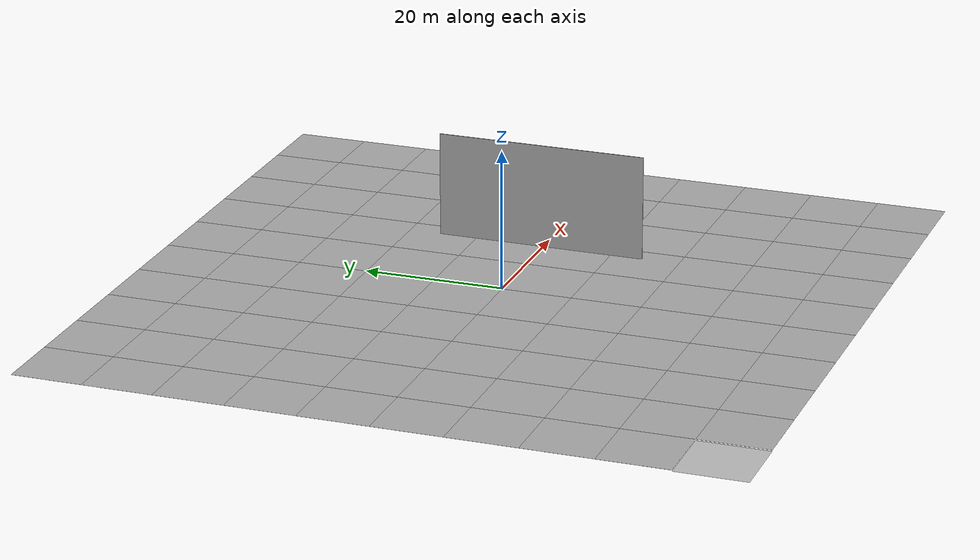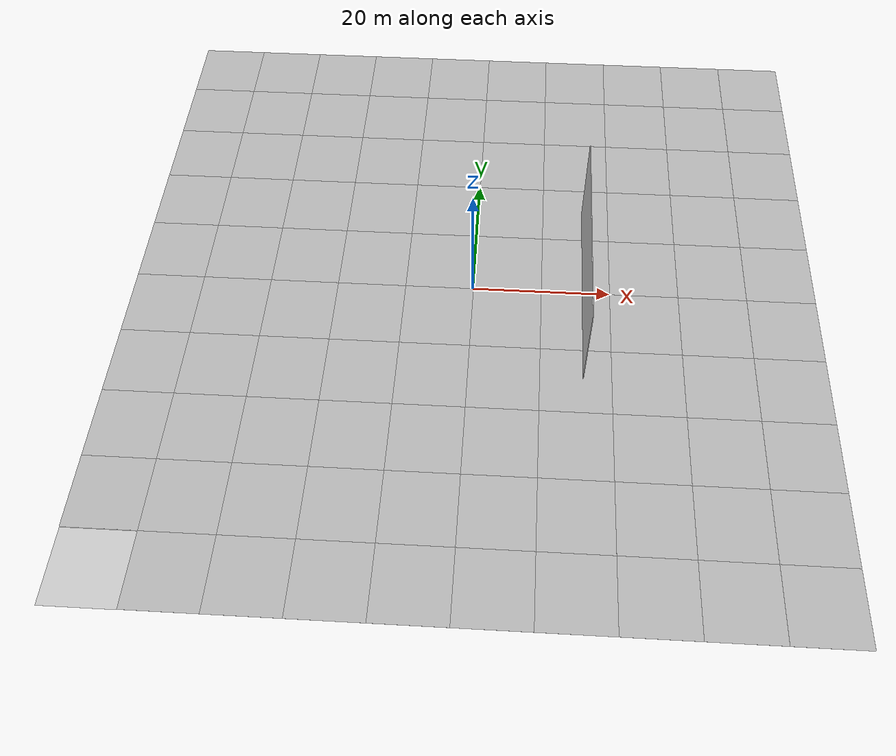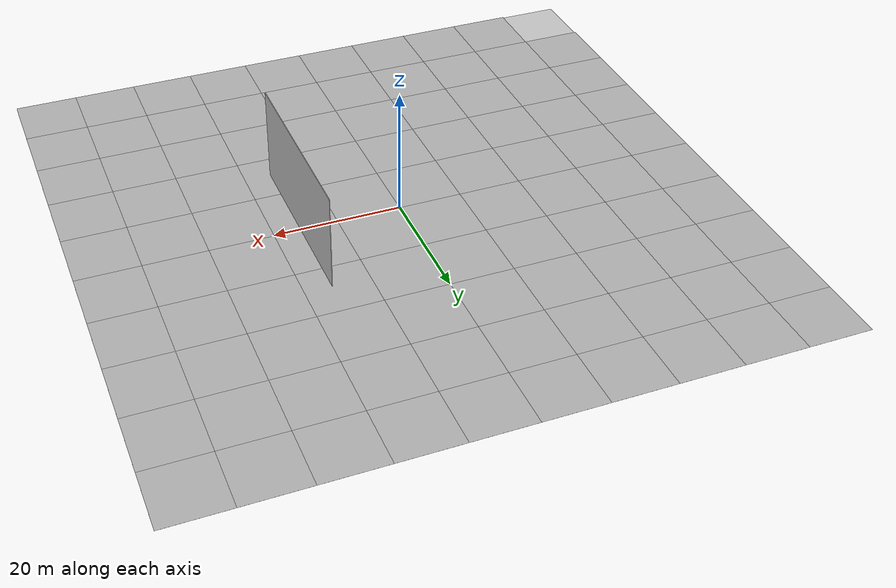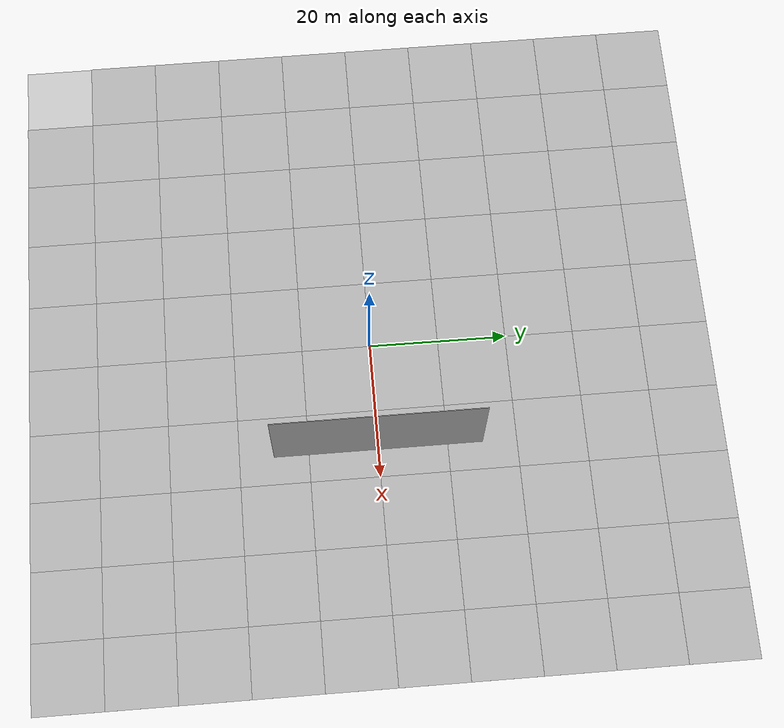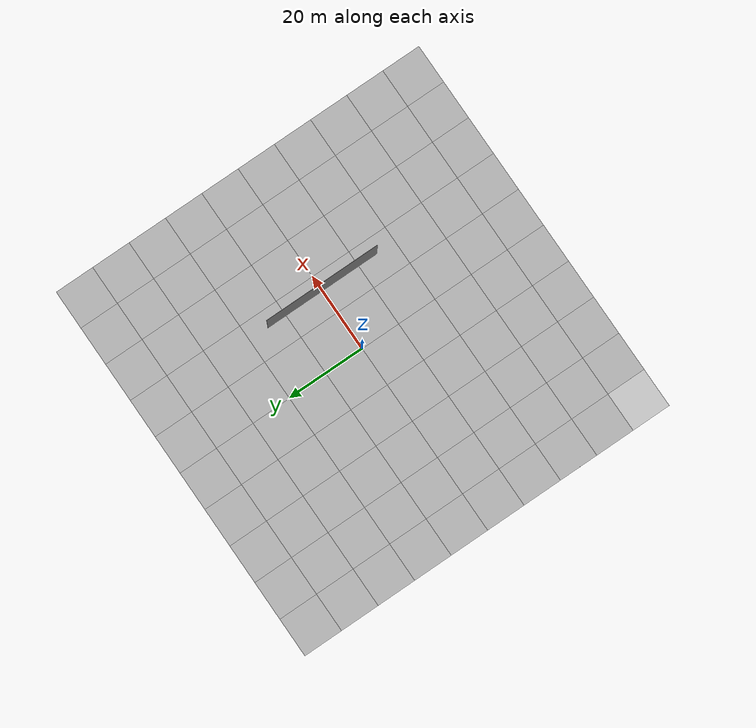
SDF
<sdf version="1.6">
 <world name="default">
  <physics type="ode">
   <ode>
    <solver>
     <type>quick</type>
     <iters>100</iters>
     <sor>1.0</sor>
     <island_threads>16</island_threads>
     <thread_position_correction>true</thread_position_correction>
    </solver>
    <constraints>
     <cfm>0.0</cfm>
     <erp>0.2</erp>
     <contact_max_correcting_vel>0.1</contact_max_correcting_vel>
     <contact_surface_layer>0.0</contact_surface_layer>
    </constraints>
   </ode>
   <real_time_update_rate>-1</real_time_update_rate>
  </physics>
  <gravity>0 0 -9.8</gravity>
  <include><uri>model://sun</uri></include>
  <include><uri>model://ground_plane_unique</uri><name>ground_plane</name></include>
  <include>
   <uri>model://down_cam</uri>
   <name>down_cam_1</name>
   <plugin name="down_cam_follower_1" filename="libFollowerDownCamPlugin.so">
    <target_model>iris1</target_model>
    <target_link>iris::base_link</target_link>
    <offset>0 0 -0.05</offset>
   </plugin>
  </include>
  <include><uri>model://canvas_screen</uri><pose>16 0 7 0 0 0</pose></include>
 </world>
</sdf>

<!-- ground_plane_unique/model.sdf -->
<sdf version="1.6">
  <model name="ground_plane_unique">
    <static>true</static>
    <link name="ground_link">
      <pose>0 0 0 0 0 0</pose>
      <collision name="collision">
        <geometry>
          <plane>
            <normal>0 0 1</normal>
            <size>100 100</size>
          </plane>
        </geometry>
        <surface>
          <friction>
            <ode>
              <mu>1.0</mu>
              <mu2>1.0</mu2>
            </ode>
          </friction>
        </surface>
      </collision>
      <visual name="tile_00_00">
        <pose>-45.000 -45.000 0.005 0 0 0</pose>
        <cast_shadows>false</cast_shadows>
        <geometry>
          <plane>
            <normal>0 0 1</normal>
            <size>10 10</size>
          </plane>
        </geometry>
        <material>
          <script>
            <uri>model://ground_plane_unique/materials/scripts</uri>
            <uri>model://ground_plane_unique/materials/textures</uri>
            <name>GroundUnique/Tile000</name>
          </script>
        </material>
      </visual>
      <visual name="tile_00_01">
        <pose>-35.000 -45.000 0.005 0 0 0</pose>
        <cast_shadows>false</cast_shadows>
        <geometry>
          <plane>
            <normal>0 0 1</normal>
            <size>10 10</size>
          </plane>
        </geometry>
        <material>
          <script>
            <uri>model://ground_plane_unique/materials/scripts</uri>
            <uri>model://ground_plane_unique/materials/textures</uri>
            <name>GroundUnique/Tile001</name>
          </script>
        </material>
      </visual>
      <visual name="tile_00_02">
        <pose>-25.000 -45.000 0.005 0 0 0</pose>
        <cast_shadows>false</cast_shadows>
        <geometry>
          <plane>
            <normal>0 0 1</normal>
            <size>10 10</size>
          </plane>
        </geometry>
        <material>
          <script>
            <uri>model://ground_plane_unique/materials/scripts</uri>
            <uri>model://ground_plane_unique/materials/textures</uri>
            <name>GroundUnique/Tile002</name>
          </script>
        </material>
      </visual>
      <visual name="tile_00_03">
        <pose>-15.000 -45.000 0.005 0 0 0</pose>
        <cast_shadows>false</cast_shadows>
        <geometry>
          <plane>
            <normal>0 0 1</normal>
            <size>10 10</size>
          </plane>
        </geometry>
        <material>
          <script>
            <uri>model://ground_plane_unique/materials/scripts</uri>
            <uri>model://ground_plane_unique/materials/textures</uri>
            <name>GroundUnique/Tile003</name>
          </script>
        </material>
      </visual>
      <visual name="tile_00_04">
        <pose>-5.000 -45.000 0.005 0 0 0</pose>
        <cast_shadows>false</cast_shadows>
        <geometry>
          <plane>
            <normal>0 0 1</normal>
            <size>10 10</size>
          </plane>
        </geometry>
        <material>
          <script>
            <uri>model://ground_plane_unique/materials/scripts</uri>
            <uri>model://ground_plane_unique/materials/textures</uri>
            <name>GroundUnique/Tile004</name>
          </script>
        </material>
      </visual>
      <visual name="tile_00_05">
        <pose>5.000 -45.000 0.005 0 0 0</pose>
        <cast_shadows>false</cast_shadows>
        <geometry>
          <plane>
            <normal>0 0 1</normal>
            <size>10 10</size>
          </plane>
        </geometry>
        <material>
          <script>
            <uri>model://ground_plane_unique/materials/scripts</uri>
            <uri>model://ground_plane_unique/materials/textures</uri>
            <name>GroundUnique/Tile005</name>
          </script>
        </material>
      </visual>
      <visual name="tile_00_06">
        <pose>15.000 -45.000 0.005 0 0 0</pose>
        <cast_shadows>false</cast_shadows>
        <geometry>
          <plane>
            <normal>0 0 1</normal>
            <size>10 10</size>
          </plane>
        </geometry>
        <material>
          <script>
            <uri>model://ground_plane_unique/materials/scripts</uri>
            <uri>model://ground_plane_unique/materials/textures</uri>
            <name>GroundUnique/Tile006</name>
          </script>
        </material>
      </visual>
      <visual name="tile_00_07">
        <pose>25.000 -45.000 0.005 0 0 0</pose>
        <cast_shadows>false</cast_shadows>
        <geometry>
          <plane>
            <normal>0 0 1</normal>
            <size>10 10</size>
          </plane>
        </geometry>
        <material>
          <script>
            <uri>model://ground_plane_unique/materials/scripts</uri>
            <uri>model://ground_plane_unique/materials/textures</uri>
            <name>GroundUnique/Tile007</name>
          </script>
        </material>
      </visual>
      <visual name="tile_00_08">
        <pose>35.000 -45.000 0.005 0 0 0</pose>
        <cast_shadows>false</cast_shadows>
        <geometry>
          <plane>
            <normal>0 0 1</normal>
            <size>10 10</size>
          </plane>
        </geometry>
        <material>
          <script>
            <uri>model://ground_plane_unique/materials/scripts</uri>
            <uri>model://ground_plane_unique/materials/textures</uri>
            <name>GroundUnique/Tile008</name>
          </script>
        </material>
      </visual>
      <visual name="tile_00_09">
        <pose>45.000 -45.000 0.005 0 0 0</pose>
        <cast_shadows>false</cast_shadows>
        <geometry>
          <plane>
            <normal>0 0 1</normal>
            <size>10 10</size>
          </plane>
        </geometry>
        <material>
          <script>
            <uri>model://ground_plane_unique/materials/scripts</uri>
            <uri>model://ground_plane_unique/materials/textures</uri>
            <name>GroundUnique/Tile009</name>
          </script>
        </material>
      </visual>
      <visual name="tile_01_00">
        <pose>-45.000 -35.000 0.005 0 0 0</pose>
        <cast_shadows>false</cast_shadows>
        <geometry>
          <plane>
            <normal>0 0 1</normal>
            <size>10 10</size>
          </plane>
        </geometry>
        <material>
          <script>
            <uri>model://ground_plane_unique/materials/scripts</uri>
            <uri>model://ground_plane_unique/materials/textures</uri>
            <name>GroundUnique/Tile010</name>
          </script>
        </material>
      </visual>
      <visual name="tile_01_01">
        <pose>-35.000 -35.000 0.005 0 0 0</pose>
        <cast_shadows>false</cast_shadows>
        <geometry>
          <plane>
            <normal>0 0 1</normal>
            <size>10 10</size>
          </plane>
        </geometry>
        <material>
          <script>
            <uri>model://ground_plane_unique/materials/scripts</uri>
            <uri>model://ground_plane_unique/materials/textures</uri>
            <name>GroundUnique/Tile011</name>
          </script>
        </material>
      </visual>
      <visual name="tile_01_02">
        <pose>-25.000 -35.000 0.005 0 0 0</pose>
        <cast_shadows>false</cast_shadows>
        <geometry>
          <plane>
            <normal>0 0 1</normal>
            <size>10 10</size>
          </plane>
        </geometry>
        <material>
          <script>
            <uri>model://ground_plane_unique/materials/scripts</uri>
            <uri>model://ground_plane_unique/materials/textures</uri>
            <name>GroundUnique/Tile012</name>
          </script>
        </material>
      </visual>
      <visual name="tile_01_03">
        <pose>-15.000 -35.000 0.005 0 0 0</pose>
        <cast_shadows>false</cast_shadows>
        <geometry>
          <plane>
            <normal>0 0 1</normal>
            <size>10 10</size>
          </plane>
        </geometry>
        <material>
          <script>
            <uri>model://ground_plane_unique/materials/scripts</uri>
            <uri>model://ground_plane_unique/materials/textures</uri>
            <name>GroundUnique/Tile013</name>
          </script>
        </material>
      </visual>
      <visual name="tile_01_04">
        <pose>-5.000 -35.000 0.005 0 0 0</pose>
        <cast_shadows>false</cast_shadows>
        <geometry>
          <plane>
            <normal>0 0 1</normal>
            <size>10 10</size>
          </plane>
        </geometry>
        <material>
          <script>
            <uri>model://ground_plane_unique/materials/scripts</uri>
            <uri>model://ground_plane_unique/materials/textures</uri>
            <name>GroundUnique/Tile014</name>
          </script>
        </material>
      </visual>
      <visual name="tile_01_05">
        <pose>5.000 -35.000 0.005 0 0 0</pose>
        <cast_shadows>false</cast_shadows>
        <geometry>
          <plane>
            <normal>0 0 1</normal>
            <size>10 10</size>
          </plane>
        </geometry>
        <material>
          <script>
            <uri>model://ground_plane_unique/materials/scripts</uri>
            <uri>model://ground_plane_unique/materials/textures</uri>
            <name>GroundUnique/Tile015</name>
          </script>
        </material>
      </visual>
      <visual name="tile_01_06">
        <pose>15.000 -35.000 0.005 0 0 0</pose>
        <cast_shadows>false</cast_shadows>
        <geometry>
          <plane>
            <normal>0 0 1</normal>
            <size>10 10</size>
          </plane>
        </geometry>
        <material>
          <script>
            <uri>model://ground_plane_unique/materials/scripts</uri>
            <uri>model://ground_plane_unique/materials/textures</uri>
            <name>GroundUnique/Tile016</name>
          </script>
        </material>
      </visual>
      <visual name="tile_01_07">
        <pose>25.000 -35.000 0.005 0 0 0</pose>
        <cast_shadows>false</cast_shadows>
        <geometry>
          <plane>
            <normal>0 0 1</normal>
            <size>10 10</size>
          </plane>
        </geometry>
        <material>
          <script>
            <uri>model://ground_plane_unique/materials/scripts</uri>
            <uri>model://ground_plane_unique/materials/textures</uri>
            <name>GroundUnique/Tile017</name>
          </script>
        </material>
      </visual>
      <visual name="tile_01_08">
        <pose>35.000 -35.000 0.005 0 0 0</pose>
        <cast_shadows>false</cast_shadows>
        <geometry>
          <plane>
            <normal>0 0 1</normal>
            <size>10 10</size>
          </plane>
        </geometry>
        <material>
          <script>
            <uri>model://ground_plane_unique/materials/scripts</uri>
            <uri>model://ground_plane_unique/materials/textures</uri>
            <name>GroundUnique/Tile018</name>
          </script>
        </material>
      </visual>
      <visual name="tile_01_09">
        <pose>45.000 -35.000 0.005 0 0 0</pose>
        <cast_shadows>false</cast_shadows>
        <geometry>
          <plane>
            <normal>0 0 1</normal>
            <size>10 10</size>
          </plane>
        </geometry>
        <material>
          <script>
            <uri>model://ground_plane_unique/materials/scripts</uri>
            <uri>model://ground_plane_unique/materials/textures</uri>
            <name>GroundUnique/Tile019</name>
          </script>
        </material>
      </visual>
      <visual name="tile_02_00">
        <pose>-45.000 -25.000 0.005 0 0 0</pose>
        <cast_shadows>false</cast_shadows>
        <geometry>
          <plane>
            <normal>0 0 1</normal>
            <size>10 10</size>
          </plane>
        </geometry>
        <material>
          <script>
            <uri>model://ground_plane_unique/materials/scripts</uri>
            <uri>model://ground_plane_unique/materials/textures</uri>
            <name>GroundUnique/Tile020</name>
          </script>
        </material>
      </visual>
      <visual name="tile_02_01">
        <pose>-35.000 -25.000 0.005 0 0 0</pose>
        <cast_shadows>false</cast_shadows>
        <geometry>
          <plane>
            <normal>0 0 1</normal>
            <size>10 10</size>
          </plane>
        </geometry>
        <material>
          <script>
            <uri>model://ground_plane_unique/materials/scripts</uri>
            <uri>model://ground_plane_unique/materials/textures</uri>
            <name>GroundUnique/Tile021</name>
          </script>
        </material>
      </visual>
      <visual name="tile_02_02">
        <pose>-25.000 -25.000 0.005 0 0 0</pose>
        <cast_shadows>false</cast_shadows>
        <geometry>
          <plane>
            <normal>0 0 1</normal>
            <size>10 10</size>
          </plane>
        </geometry>
        <material>
          <script>
            <uri>model://ground_plane_unique/materials/scripts</uri>
            <uri>model://ground_plane_unique/materials/textures</uri>
            <name>GroundUnique/Tile022</name>
          </script>
        </material>
      </visual>
      <visual name="tile_02_03">
        <pose>-15.000 -25.000 0.005 0 0 0</pose>
        <cast_shadows>false</cast_shadows>
        <geometry>
          <plane>
            <normal>0 0 1</normal>
            <size>10 10</size>
          </plane>
        </geometry>
        <material>
          <script>
            <uri>model://ground_plane_unique/materials/scripts</uri>
            <uri>model://ground_plane_unique/materials/textures</uri>
            <name>GroundUnique/Tile023</name>
          </script>
        </material>
      </visual>
      <visual name="tile_02_04">
        <pose>-5.000 -25.000 0.005 0 0 0</pose>
        <cast_shadows>false</cast_shadows>
        <geometry>
          <plane>
            <normal>0 0 1</normal>
            <size>10 10</size>
          </plane>
        </geometry>
        <material>
          <script>
            <uri>model://ground_plane_unique/materials/scripts</uri>
            <uri>model://ground_plane_unique/materials/textures</uri>
            <name>GroundUnique/Tile024</name>
          </script>
        </material>
      </visual>
      <visual name="tile_02_05">
        <pose>5.000 -25.000 0.005 0 0 0</pose>
        <cast_shadows>false</cast_shadows>
        <geometry>
          <plane>
            <normal>0 0 1</normal>
            <size>10 10</size>
          </plane>
        </geometry>
        <material>
          <script>
            <uri>model://ground_plane_unique/materials/scripts</uri>
            <uri>model://ground_plane_unique/materials/textures</uri>
            <name>GroundUnique/Tile025</name>
          </script>
        </material>
      </visual>
      <visual name="tile_02_06">
        <pose>15.000 -25.000 0.005 0 0 0</pose>
        <cast_shadows>false</cast_shadows>
        <geometry>
          <plane>
            <normal>0 0 1</normal>
            <size>10 10</size>
          </plane>
        </geometry>
        <material>
          <script>
            <uri>model://ground_plane_unique/materials/scripts</uri>
            <uri>model://ground_plane_unique/materials/textures</uri>
            <name>GroundUnique/Tile026</name>
          </script>
        </material>
      </visual>
      <visual name="tile_02_07">
        <pose>25.000 -25.000 0.005 0 0 0</pose>
        <cast_shadows>false</cast_shadows>
        <geometry>
          <plane>
            <normal>0 0 1</normal>
            <size>10 10</size>
          </plane>
        </geometry>
        <material>
          <script>
            <uri>model://ground_plane_unique/materials/scripts</uri>
            <uri>model://ground_plane_unique/materials/textures</uri>
            <name>GroundUnique/Tile027</name>
          </script>
        </material>
      </visual>
      <visual name="tile_02_08">
        <pose>35.000 -25.000 0.005 0 0 0</pose>
        <cast_shadows>false</cast_shadows>
        <geometry>
          <plane>
            <normal>0 0 1</normal>
            <size>10 10</size>
          </plane>
        </geometry>
        <material>
          <script>
            <uri>model://ground_plane_unique/materials/scripts</uri>
            <uri>model://ground_plane_unique/materials/textures</uri>
            <name>GroundUnique/Tile028</name>
          </script>
        </material>
      </visual>
      <visual name="tile_02_09">
        <pose>45.000 -25.000 0.005 0 0 0</pose>
        <cast_shadows>false</cast_shadows>
        <geometry>
          <plane>
            <normal>0 0 1</normal>
            <size>10 10</size>
          </plane>
        </geometry>
        <material>
          <script>
            <uri>model://ground_plane_unique/materials/scripts</uri>
            <uri>model://ground_plane_unique/materials/textures</uri>
            <name>GroundUnique/Tile029</name>
          </script>
        </material>
      </visual>
      <visual name="tile_03_00">
        <pose>-45.000 -15.000 0.005 0 0 0</pose>
        <cast_shadows>false</cast_shadows>
        <geometry>
          <plane>
            <normal>0 0 1</normal>
            <size>10 10</size>
          </plane>
        </geometry>
        <material>
          <script>
            <uri>model://ground_plane_unique/materials/scripts</uri>
            <uri>model://ground_plane_unique/materials/textures</uri>
            <name>GroundUnique/Tile030</name>
          </script>
        </material>
      </visual>
      <visual name="tile_03_01">
        <pose>-35.000 -15.000 0.005 0 0 0</pose>
        <cast_shadows>false</cast_shadows>
        <geometry>
          <plane>
            <normal>0 0 1</normal>
            <size>10 10</size>
          </plane>
        </geometry>
        <material>
          <script>
            <uri>model://ground_plane_unique/materials/scripts</uri>
            <uri>model://ground_plane_unique/materials/textures</uri>
            <name>GroundUnique/Tile031</name>
          </script>
        </material>
      </visual>
      <visual name="tile_03_02">
        <pose>-25.000 -15.000 0.005 0 0 0</pose>
        <cast_shadows>false</cast_shadows>
        <geometry>
          <plane>
            <normal>0 0 1</normal>
            <size>10 10</size>
          </plane>
        </geometry>
        <material>
          <script>
            <uri>model://ground_plane_unique/materials/scripts</uri>
            <uri>model://ground_plane_unique/materials/textures</uri>
            <name>GroundUnique/Tile032</name>
          </script>
        </material>
      </visual>
      <visual name="tile_03_03">
        <pose>-15.000 -15.000 0.005 0 0 0</pose>
        <cast_shadows>false</cast_shadows>
        <geometry>
          <plane>
            <normal>0 0 1</normal>
            <size>10 10</size>
          </plane>
        </geometry>
        <material>
          <script>
            <uri>model://ground_plane_unique/materials/scripts</uri>
            <uri>model://ground_plane_unique/materials/textures</uri>
            <name>GroundUnique/Tile033</name>
          </script>
        </material>
      </visual>
      <visual name="tile_03_04">
        <pose>-5.000 -15.000 0.005 0 0 0</pose>
        <cast_shadows>false</cast_shadows>
        <geometry>
          <plane>
            <normal>0 0 1</normal>
            <size>10 10</size>
          </plane>
        </geometry>
        <material>
          <script>
            <uri>model://ground_plane_unique/materials/scripts</uri>
            <uri>model://ground_plane_unique/materials/textures</uri>
            <name>GroundUnique/Tile034</name>
          </script>
        </material>
      </visual>
      <visual name="tile_03_05">
        <pose>5.000 -15.000 0.005 0 0 0</pose>
        <cast_shadows>false</cast_shadows>
        <geometry>
          <plane>
            <normal>0 0 1</normal>
            <size>10 10</size>
          </plane>
        </geometry>
        <material>
          <script>
            <uri>model://ground_plane_unique/materials/scripts</uri>
            <uri>model://ground_plane_unique/materials/textures</uri>
            <name>GroundUnique/Tile035</name>
          </script>
        </material>
      </visual>
      <visual name="tile_03_06">
        <pose>15.000 -15.000 0.005 0 0 0</pose>
        <cast_shadows>false</cast_shadows>
        <geometry>
          <plane>
            <normal>0 0 1</normal>
            <size>10 10</size>
          </plane>
        </geometry>
        <material>
          <script>
            <uri>model://ground_plane_unique/materials/scripts</uri>
            <uri>model://ground_plane_unique/materials/textures</uri>
            <name>GroundUnique/Tile036</name>
          </script>
        </material>
      </visual>
      <visual name="tile_03_07">
        <pose>25.000 -15.000 0.005 0 0 0</pose>
        <cast_shadows>false</cast_shadows>
        <geometry>
          <plane>
            <normal>0 0 1</normal>
            <size>10 10</size>
          </plane>
        </geometry>
        <material>
          <script>
            <uri>model://ground_plane_unique/materials/scripts</uri>
            <uri>model://ground_plane_unique/materials/textures</uri>
            <name>GroundUnique/Tile037</name>
          </script>
        </material>
      </visual>
      <visual name="tile_03_08">
        <pose>35.000 -15.000 0.005 0 0 0</pose>
        <cast_shadows>false</cast_shadows>
        <geometry>
          <plane>
            <normal>0 0 1</normal>
            <size>10 10</size>
          </plane>
        </geometry>
        <material>
          <script>
            <uri>model://ground_plane_unique/materials/scripts</uri>
            <uri>model://ground_plane_unique/materials/textures</uri>
            <name>GroundUnique/Tile038</name>
          </script>
        </material>
      </visual>
      <visual name="tile_03_09">
        <pose>45.000 -15.000 0.005 0 0 0</pose>
        <cast_shadows>false</cast_shadows>
        <geometry>
          <plane>
            <normal>0 0 1</normal>
            <size>10 10</size>
          </plane>
        </geometry>
        <material>
          <script>
            <uri>model://ground_plane_unique/materials/scripts</uri>
            <uri>model://ground_plane_unique/materials/textures</uri>
            <name>GroundUnique/Tile039</name>
          </script>
        </material>
      </visual>
      <visual name="tile_04_00">
        <pose>-45.000 -5.000 0.005 0 0 0</pose>
        <cast_shadows>false</cast_shadows>
        <geometry>
          <plane>
            <normal>0 0 1</normal>
            <size>10 10</size>
          </plane>
        </geometry>
        <material>
          <script>
            <uri>model://ground_plane_unique/materials/scripts</uri>
            <uri>model://ground_plane_unique/materials/textures</uri>
            <name>GroundUnique/Tile040</name>
          </script>
        </material>
      </visual>
      <visual name="tile_04_01">
        <pose>-35.000 -5.000 0.005 0 0 0</pose>
        <cast_shadows>false</cast_shadows>
        <geometry>
          <plane>
            <normal>0 0 1</normal>
            <size>10 10</size>
          </plane>
        </geometry>
        <material>
          <script>
            <uri>model://ground_plane_unique/materials/scripts</uri>
            <uri>model://ground_plane_unique/materials/textures</uri>
            <name>GroundUnique/Tile041</name>
          </script>
        </material>
      </visual>
      <visual name="tile_04_02">
        <pose>-25.000 -5.000 0.005 0 0 0</pose>
        <cast_shadows>false</cast_shadows>
        <geometry>
          <plane>
            <normal>0 0 1</normal>
            <size>10 10</size>
          </plane>
        </geometry>
        <material>
          <script>
            <uri>model://ground_plane_unique/materials/scripts</uri>
            <uri>model://ground_plane_unique/materials/textures</uri>
            <name>GroundUnique/Tile042</name>
          </script>
        </material>
      </visual>
      <visual name="tile_04_03">
        <pose>-15.000 -5.000 0.005 0 0 0</pose>
        <cast_shadows>false</cast_shadows>
        <geometry>
          <plane>
            <normal>0 0 1</normal>
            <size>10 10</size>
          </plane>
        </geometry>
        <material>
          <script>
            <uri>model://ground_plane_unique/materials/scripts</uri>
            <uri>model://ground_plane_unique/materials/textures</uri>
            <name>GroundUnique/Tile043</name>
          </script>
        </material>
      </visual>
      <visual name="tile_04_04">
        <pose>-5.000 -5.000 0.005 0 0 0</pose>
        <cast_shadows>false</cast_shadows>
        <geometry>
          <plane>
            <normal>0 0 1</normal>
            <size>10 10</size>
          </plane>
        </geometry>
        <material>
          <script>
            <uri>model://ground_plane_unique/materials/scripts</uri>
            <uri>model://ground_plane_unique/materials/textures</uri>
            <name>GroundUnique/Tile044</name>
          </script>
        </material>
      </visual>
      <visual name="tile_04_05">
        <pose>5.000 -5.000 0.005 0 0 0</pose>
        <cast_shadows>false</cast_shadows>
        <geometry>
          <plane>
            <normal>0 0 1</normal>
            <size>10 10</size>
          </plane>
        </geometry>
        <material>
          <script>
            <uri>model://ground_plane_unique/materials/scripts</uri>
            <uri>model://ground_plane_unique/materials/textures</uri>
            <name>GroundUnique/Tile045</name>
          </script>
        </material>
      </visual>
      <visual name="tile_04_06">
        <pose>15.000 -5.000 0.005 0 0 0</pose>
        <cast_shadows>false</cast_shadows>
        <geometry>
          <plane>
            <normal>0 0 1</normal>
            <size>10 10</size>
          </plane>
        </geometry>
        <material>
          <script>
            <uri>model://ground_plane_unique/materials/scripts</uri>
            <uri>model://ground_plane_unique/materials/textures</uri>
            <name>GroundUnique/Tile046</name>
          </script>
        </material>
      </visual>
      <visual name="tile_04_07">
        <pose>25.000 -5.000 0.005 0 0 0</pose>
        <cast_shadows>false</cast_shadows>
        <geometry>
          <plane>
            <normal>0 0 1</normal>
            <size>10 10</size>
          </plane>
        </geometry>
        <material>
          <script>
            <uri>model://ground_plane_unique/materials/scripts</uri>
            <uri>model://ground_plane_unique/materials/textures</uri>
            <name>GroundUnique/Tile047</name>
          </script>
        </material>
      </visual>
      <visual name="tile_04_08">
        <pose>35.000 -5.000 0.005 0 0 0</pose>
        <cast_shadows>false</cast_shadows>
        <geometry>
          <plane>
            <normal>0 0 1</normal>
            <size>10 10</size>
          </plane>
        </geometry>
        <material>
          <script>
            <uri>model://ground_plane_unique/materials/scripts</uri>
            <uri>model://ground_plane_unique/materials/textures</uri>
            <name>GroundUnique/Tile048</name>
          </script>
        </material>
      </visual>
      <visual name="tile_04_09">
        <pose>45.000 -5.000 0.005 0 0 0</pose>
        <cast_shadows>false</cast_shadows>
        <geometry>
          <plane>
            <normal>0 0 1</normal>
            <size>10 10</size>
          </plane>
        </geometry>
        <material>
          <script>
            <uri>model://ground_plane_unique/materials/scripts</uri>
            <uri>model://ground_plane_unique/materials/textures</uri>
            <name>GroundUnique/Tile049</name>
          </script>
        </material>
      </visual>
      <visual name="tile_05_00">
        <pose>-45.000 5.000 0.005 0 0 0</pose>
        <cast_shadows>false</cast_shadows>
        <geometry>
          <plane>
            <normal>0 0 1</normal>
            <size>10 10</size>
          </plane>
        </geometry>
        <material>
          <script>
            <uri>model://ground_plane_unique/materials/scripts</uri>
            <uri>model://ground_plane_unique/materials/textures</uri>
            <name>GroundUnique/Tile050</name>
          </script>
        </material>
      </visual>
      <visual name="tile_05_01">
        <pose>-35.000 5.000 0.005 0 0 0</pose>
        <cast_shadows>false</cast_shadows>
        <geometry>
          <plane>
            <normal>0 0 1</normal>
            <size>10 10</size>
          </plane>
        </geometry>
        <material>
          <script>
            <uri>model://ground_plane_unique/materials/scripts</uri>
            <uri>model://ground_plane_unique/materials/textures</uri>
            <name>GroundUnique/Tile051</name>
          </script>
        </material>
      </visual>
      <visual name="tile_05_02">
        <pose>-25.000 5.000 0.005 0 0 0</pose>
        <cast_shadows>false</cast_shadows>
        <geometry>
          <plane>
            <normal>0 0 1</normal>
            <size>10 10</size>
          </plane>
        </geometry>
        <material>
          <script>
            <uri>model://ground_plane_unique/materials/scripts</uri>
            <uri>model://ground_plane_unique/materials/textures</uri>
            <name>GroundUnique/Tile052</name>
          </script>
        </material>
      </visual>
      <visual name="tile_05_03">
        <pose>-15.000 5.000 0.005 0 0 0</pose>
        <cast_shadows>false</cast_shadows>
        <geometry>
          <plane>
            <normal>0 0 1</normal>
            <size>10 10</size>
          </plane>
        </geometry>
        <material>
          <script>
            <uri>model://ground_plane_unique/materials/scripts</uri>
            <uri>model://ground_plane_unique/materials/textures</uri>
            <name>GroundUnique/Tile053</name>
          </script>
        </material>
      </visual>
      <visual name="tile_05_04">
        <pose>-5.000 5.000 0.005 0 0 0</pose>
        <cast_shadows>false</cast_shadows>
        <geometry>
          <plane>
            <normal>0 0 1</normal>
            <size>10 10</size>
          </plane>
        </geometry>
        <material>
          <script>
            <uri>model://ground_plane_unique/materials/scripts</uri>
            <uri>model://ground_plane_unique/materials/textures</uri>
            <name>GroundUnique/Tile054</name>
          </script>
        </material>
      </visual>
      <visual name="tile_05_05">
        <pose>5.000 5.000 0.005 0 0 0</pose>
        <cast_shadows>false</cast_shadows>
        <geometry>
          <plane>
            <normal>0 0 1</normal>
            <size>10 10</size>
          </plane>
        </geometry>
        <material>
          <script>
            <uri>model://ground_plane_unique/materials/scripts</uri>
            <uri>model://ground_plane_unique/materials/textures</uri>
            <name>GroundUnique/Tile055</name>
          </script>
        </material>
      </visual>
      <visual name="tile_05_06">
        <pose>15.000 5.000 0.005 0 0 0</pose>
        <cast_shadows>false</cast_shadows>
        <geometry>
          <plane>
            <normal>0 0 1</normal>
            <size>10 10</size>
          </plane>
        </geometry>
        <material>
          <script>
            <uri>model://ground_plane_unique/materials/scripts</uri>
            <uri>model://ground_plane_unique/materials/textures</uri>
            <name>GroundUnique/Tile056</name>
          </script>
        </material>
      </visual>
      <visual name="tile_05_07">
        <pose>25.000 5.000 0.005 0 0 0</pose>
        <cast_shadows>false</cast_shadows>
        <geometry>
          <plane>
            <normal>0 0 1</normal>
            <size>10 10</size>
          </plane>
        </geometry>
        <material>
          <script>
            <uri>model://ground_plane_unique/materials/scripts</uri>
            <uri>model://ground_plane_unique/materials/textures</uri>
            <name>GroundUnique/Tile057</name>
          </script>
        </material>
      </visual>
      <visual name="tile_05_08">
        <pose>35.000 5.000 0.005 0 0 0</pose>
        <cast_shadows>false</cast_shadows>
        <geometry>
          <plane>
            <normal>0 0 1</normal>
            <size>10 10</size>
          </plane>
        </geometry>
        <material>
          <script>
            <uri>model://ground_plane_unique/materials/scripts</uri>
            <uri>model://ground_plane_unique/materials/textures</uri>
            <name>GroundUnique/Tile058</name>
          </script>
        </material>
      </visual>
      <visual name="tile_05_09">
        <pose>45.000 5.000 0.005 0 0 0</pose>
        <cast_shadows>false</cast_shadows>
        <geometry>
          <plane>
            <normal>0 0 1</normal>
            <size>10 10</size>
          </plane>
        </geometry>
        <material>
          <script>
            <uri>model://ground_plane_unique/materials/scripts</uri>
            <uri>model://ground_plane_unique/materials/textures</uri>
            <name>GroundUnique/Tile059</name>
          </script>
        </material>
      </visual>
      <visual name="tile_06_00">
        <pose>-45.000 15.000 0.005 0 0 0</pose>
        <cast_shadows>false</cast_shadows>
        <geometry>
          <plane>
            <normal>0 0 1</normal>
            <size>10 10</size>
          </plane>
        </geometry>
        <material>
          <script>
            <uri>model://ground_plane_unique/materials/scripts</uri>
            <uri>model://ground_plane_unique/materials/textures</uri>
            <name>GroundUnique/Tile060</name>
          </script>
        </material>
      </visual>
      <visual name="tile_06_01">
        <pose>-35.000 15.000 0.005 0 0 0</pose>
        <cast_shadows>false</cast_shadows>
        <geometry>
          <plane>
            <normal>0 0 1</normal>
            <size>10 10</size>
          </plane>
        </geometry>
        <material>
          <script>
            <uri>model://ground_plane_unique/materials/scripts</uri>
            <uri>model://ground_plane_unique/materials/textures</uri>
            <name>GroundUnique/Tile061</name>
          </script>
        </material>
      </visual>
      <visual name="tile_06_02">
        <pose>-25.000 15.000 0.005 0 0 0</pose>
        <cast_shadows>false</cast_shadows>
        <geometry>
          <plane>
            <normal>0 0 1</normal>
            <size>10 10</size>
          </plane>
        </geometry>
        <material>
          <script>
            <uri>model://ground_plane_unique/materials/scripts</uri>
            <uri>model://ground_plane_unique/materials/textures</uri>
            <name>GroundUnique/Tile062</name>
          </script>
        </material>
      </visual>
      <visual name="tile_06_03">
        <pose>-15.000 15.000 0.005 0 0 0</pose>
        <cast_shadows>false</cast_shadows>
        <geometry>
          <plane>
            <normal>0 0 1</normal>
            <size>10 10</size>
          </plane>
        </geometry>
        <material>
          <script>
            <uri>model://ground_plane_unique/materials/scripts</uri>
            <uri>model://ground_plane_unique/materials/textures</uri>
            <name>GroundUnique/Tile063</name>
          </script>
        </material>
      </visual>
      <visual name="tile_06_04">
        <pose>-5.000 15.000 0.005 0 0 0</pose>
        <cast_shadows>false</cast_shadows>
        <geometry>
          <plane>
            <normal>0 0 1</normal>
            <size>10 10</size>
          </plane>
        </geometry>
        <material>
          <script>
            <uri>model://ground_plane_unique/materials/scripts</uri>
            <uri>model://ground_plane_unique/materials/textures</uri>
            <name>GroundUnique/Tile064</name>
          </script>
        </material>
      </visual>
      <visual name="tile_06_05">
        <pose>5.000 15.000 0.005 0 0 0</pose>
        <cast_shadows>false</cast_shadows>
        <geometry>
          <plane>
            <normal>0 0 1</normal>
            <size>10 10</size>
          </plane>
        </geometry>
        <material>
          <script>
            <uri>model://ground_plane_unique/materials/scripts</uri>
            <uri>model://ground_plane_unique/materials/textures</uri>
            <name>GroundUnique/Tile065</name>
          </script>
        </material>
      </visual>
      <visual name="tile_06_06">
        <pose>15.000 15.000 0.005 0 0 0</pose>
        <cast_shadows>false</cast_shadows>
        <geometry>
          <plane>
            <normal>0 0 1</normal>
            <size>10 10</size>
          </plane>
        </geometry>
        <material>
          <script>
            <uri>model://ground_plane_unique/materials/scripts</uri>
            <uri>model://ground_plane_unique/materials/textures</uri>
            <name>GroundUnique/Tile066</name>
          </script>
        </material>
      </visual>
      <visual name="tile_06_07">
        <pose>25.000 15.000 0.005 0 0 0</pose>
        <cast_shadows>false</cast_shadows>
        <geometry>
          <plane>
            <normal>0 0 1</normal>
            <size>10 10</size>
          </plane>
        </geometry>
        <material>
          <script>
            <uri>model://ground_plane_unique/materials/scripts</uri>
            <uri>model://ground_plane_unique/materials/textures</uri>
            <name>GroundUnique/Tile067</name>
          </script>
        </material>
      </visual>
      <visual name="tile_06_08">
        <pose>35.000 15.000 0.005 0 0 0</pose>
        <cast_shadows>false</cast_shadows>
        <geometry>
          <plane>
            <normal>0 0 1</normal>
            <size>10 10</size>
          </plane>
        </geometry>
        <material>
          <script>
            <uri>model://ground_plane_unique/materials/scripts</uri>
            <uri>model://ground_plane_unique/materials/textures</uri>
            <name>GroundUnique/Tile068</name>
          </script>
        </material>
      </visual>
      <visual name="tile_06_09">
        <pose>45.000 15.000 0.005 0 0 0</pose>
        <cast_shadows>false</cast_shadows>
        <geometry>
          <plane>
            <normal>0 0 1</normal>
            <size>10 10</size>
          </plane>
        </geometry>
        <material>
          <script>
            <uri>model://ground_plane_unique/materials/scripts</uri>
            <uri>model://ground_plane_unique/materials/textures</uri>
            <name>GroundUnique/Tile069</name>
          </script>
        </material>
      </visual>
      <visual name="tile_07_00">
        <pose>-45.000 25.000 0.005 0 0 0</pose>
        <cast_shadows>false</cast_shadows>
        <geometry>
          <plane>
            <normal>0 0 1</normal>
            <size>10 10</size>
          </plane>
        </geometry>
        <material>
          <script>
            <uri>model://ground_plane_unique/materials/scripts</uri>
            <uri>model://ground_plane_unique/materials/textures</uri>
            <name>GroundUnique/Tile070</name>
          </script>
        </material>
      </visual>
      <visual name="tile_07_01">
        <pose>-35.000 25.000 0.005 0 0 0</pose>
        <cast_shadows>false</cast_shadows>
        <geometry>
          <plane>
            <normal>0 0 1</normal>
            <size>10 10</size>
          </plane>
        </geometry>
        <material>
          <script>
            <uri>model://ground_plane_unique/materials/scripts</uri>
            <uri>model://ground_plane_unique/materials/textures</uri>
            <name>GroundUnique/Tile071</name>
          </script>
        </material>
      </visual>
      <visual name="tile_07_02">
        <pose>-25.000 25.000 0.005 0 0 0</pose>
        <cast_shadows>false</cast_shadows>
        <geometry>
          <plane>
            <normal>0 0 1</normal>
            <size>10 10</size>
          </plane>
        </geometry>
        <material>
          <script>
            <uri>model://ground_plane_unique/materials/scripts</uri>
            <uri>model://ground_plane_unique/materials/textures</uri>
            <name>GroundUnique/Tile072</name>
          </script>
        </material>
      </visual>
      <visual name="tile_07_03">
        <pose>-15.000 25.000 0.005 0 0 0</pose>
        <cast_shadows>false</cast_shadows>
        <geometry>
          <plane>
            <normal>0 0 1</normal>
            <size>10 10</size>
          </plane>
        </geometry>
        <material>
          <script>
            <uri>model://ground_plane_unique/materials/scripts</uri>
            <uri>model://ground_plane_unique/materials/textures</uri>
            <name>GroundUnique/Tile073</name>
          </script>
        </material>
      </visual>
      <visual name="tile_07_04">
        <pose>-5.000 25.000 0.005 0 0 0</pose>
        <cast_shadows>false</cast_shadows>
        <geometry>
          <plane>
            <normal>0 0 1</normal>
            <size>10 10</size>
          </plane>
        </geometry>
        <material>
          <script>
            <uri>model://ground_plane_unique/materials/scripts</uri>
            <uri>model://ground_plane_unique/materials/textures</uri>
            <name>GroundUnique/Tile074</name>
          </script>
        </material>
      </visual>
      <visual name="tile_07_05">
        <pose>5.000 25.000 0.005 0 0 0</pose>
        <cast_shadows>false</cast_shadows>
        <geometry>
          <plane>
            <normal>0 0 1</normal>
            <size>10 10</size>
          </plane>
        </geometry>
        <material>
          <script>
            <uri>model://ground_plane_unique/materials/scripts</uri>
            <uri>model://ground_plane_unique/materials/textures</uri>
            <name>GroundUnique/Tile075</name>
          </script>
        </material>
      </visual>
      <visual name="tile_07_06">
        <pose>15.000 25.000 0.005 0 0 0</pose>
        <cast_shadows>false</cast_shadows>
        <geometry>
          <plane>
            <normal>0 0 1</normal>
            <size>10 10</size>
          </plane>
        </geometry>
        <material>
          <script>
            <uri>model://ground_plane_unique/materials/scripts</uri>
            <uri>model://ground_plane_unique/materials/textures</uri>
            <name>GroundUnique/Tile076</name>
          </script>
        </material>
      </visual>
      <visual name="tile_07_07">
        <pose>25.000 25.000 0.005 0 0 0</pose>
        <cast_shadows>false</cast_shadows>
        <geometry>
          <plane>
            <normal>0 0 1</normal>
            <size>10 10</size>
          </plane>
        </geometry>
        <material>
          <script>
            <uri>model://ground_plane_unique/materials/scripts</uri>
            <uri>model://ground_plane_unique/materials/textures</uri>
            <name>GroundUnique/Tile077</name>
          </script>
        </material>
      </visual>
      <visual name="tile_07_08">
        <pose>35.000 25.000 0.005 0 0 0</pose>
        <cast_shadows>false</cast_shadows>
        <geometry>
          <plane>
            <normal>0 0 1</normal>
            <size>10 10</size>
          </plane>
        </geometry>
        <material>
          <script>
            <uri>model://ground_plane_unique/materials/scripts</uri>
            <uri>model://ground_plane_unique/materials/textures</uri>
            <name>GroundUnique/Tile078</name>
          </script>
        </material>
      </visual>
      <visual name="tile_07_09">
        <pose>45.000 25.000 0.005 0 0 0</pose>
        <cast_shadows>false</cast_shadows>
        <geometry>
          <plane>
            <normal>0 0 1</normal>
            <size>10 10</size>
          </plane>
        </geometry>
        <material>
          <script>
            <uri>model://ground_plane_unique/materials/scripts</uri>
            <uri>model://ground_plane_unique/materials/textures</uri>
            <name>GroundUnique/Tile079</name>
          </script>
        </material>
      </visual>
      <visual name="tile_08_00">
        <pose>-45.000 35.000 0.005 0 0 0</pose>
        <cast_shadows>false</cast_shadows>
        <geometry>
          <plane>
            <normal>0 0 1</normal>
            <size>10 10</size>
          </plane>
        </geometry>
        <material>
          <script>
            <uri>model://ground_plane_unique/materials/scripts</uri>
            <uri>model://ground_plane_unique/materials/textures</uri>
            <name>GroundUnique/Tile080</name>
          </script>
        </material>
      </visual>
      <visual name="tile_08_01">
        <pose>-35.000 35.000 0.005 0 0 0</pose>
        <cast_shadows>false</cast_shadows>
        <geometry>
          <plane>
            <normal>0 0 1</normal>
            <size>10 10</size>
          </plane>
        </geometry>
        <material>
          <script>
            <uri>model://ground_plane_unique/materials/scripts</uri>
            <uri>model://ground_plane_unique/materials/textures</uri>
            <name>GroundUnique/Tile081</name>
          </script>
        </material>
      </visual>
      <visual name="tile_08_02">
        <pose>-25.000 35.000 0.005 0 0 0</pose>
        <cast_shadows>false</cast_shadows>
        <geometry>
          <plane>
            <normal>0 0 1</normal>
            <size>10 10</size>
          </plane>
        </geometry>
        <material>
          <script>
            <uri>model://ground_plane_unique/materials/scripts</uri>
            <uri>model://ground_plane_unique/materials/textures</uri>
            <name>GroundUnique/Tile082</name>
          </script>
        </material>
      </visual>
      <visual name="tile_08_03">
        <pose>-15.000 35.000 0.005 0 0 0</pose>
        <cast_shadows>false</cast_shadows>
        <geometry>
          <plane>
            <normal>0 0 1</normal>
            <size>10 10</size>
          </plane>
        </geometry>
        <material>
          <script>
            <uri>model://ground_plane_unique/materials/scripts</uri>
            <uri>model://ground_plane_unique/materials/textures</uri>
            <name>GroundUnique/Tile083</name>
          </script>
        </material>
      </visual>
      <visual name="tile_08_04">
        <pose>-5.000 35.000 0.005 0 0 0</pose>
        <cast_shadows>false</cast_shadows>
        <geometry>
          <plane>
            <normal>0 0 1</normal>
            <size>10 10</size>
          </plane>
        </geometry>
        <material>
          <script>
            <uri>model://ground_plane_unique/materials/scripts</uri>
            <uri>model://ground_plane_unique/materials/textures</uri>
            <name>GroundUnique/Tile084</name>
          </script>
        </material>
      </visual>
      <visual name="tile_08_05">
        <pose>5.000 35.000 0.005 0 0 0</pose>
        <cast_shadows>false</cast_shadows>
        <geometry>
          <plane>
            <normal>0 0 1</normal>
            <size>10 10</size>
          </plane>
        </geometry>
        <material>
          <script>
            <uri>model://ground_plane_unique/materials/scripts</uri>
            <uri>model://ground_plane_unique/materials/textures</uri>
            <name>GroundUnique/Tile085</name>
          </script>
        </material>
      </visual>
      <visual name="tile_08_06">
        <pose>15.000 35.000 0.005 0 0 0</pose>
        <cast_shadows>false</cast_shadows>
        <geometry>
          <plane>
            <normal>0 0 1</normal>
            <size>10 10</size>
          </plane>
        </geometry>
        <material>
          <script>
            <uri>model://ground_plane_unique/materials/scripts</uri>
            <uri>model://ground_plane_unique/materials/textures</uri>
            <name>GroundUnique/Tile086</name>
          </script>
        </material>
      </visual>
      <visual name="tile_08_07">
        <pose>25.000 35.000 0.005 0 0 0</pose>
        <cast_shadows>false</cast_shadows>
        <geometry>
          <plane>
            <normal>0 0 1</normal>
            <size>10 10</size>
          </plane>
        </geometry>
        <material>
          <script>
            <uri>model://ground_plane_unique/materials/scripts</uri>
            <uri>model://ground_plane_unique/materials/textures</uri>
            <name>GroundUnique/Tile087</name>
          </script>
        </material>
      </visual>
      <visual name="tile_08_08">
        <pose>35.000 35.000 0.005 0 0 0</pose>
        <cast_shadows>false</cast_shadows>
        <geometry>
          <plane>
            <normal>0 0 1</normal>
            <size>10 10</size>
          </plane>
        </geometry>
        <material>
          <script>
            <uri>model://ground_plane_unique/materials/scripts</uri>
            <uri>model://ground_plane_unique/materials/textures</uri>
            <name>GroundUnique/Tile088</name>
          </script>
        </material>
      </visual>
      <visual name="tile_08_09">
        <pose>45.000 35.000 0.005 0 0 0</pose>
        <cast_shadows>false</cast_shadows>
        <geometry>
          <plane>
            <normal>0 0 1</normal>
            <size>10 10</size>
          </plane>
        </geometry>
        <material>
          <script>
            <uri>model://ground_plane_unique/materials/scripts</uri>
            <uri>model://ground_plane_unique/materials/textures</uri>
            <name>GroundUnique/Tile089</name>
          </script>
        </material>
      </visual>
      <visual name="tile_09_00">
        <pose>-45.000 45.000 0.005 0 0 0</pose>
        <cast_shadows>false</cast_shadows>
        <geometry>
          <plane>
            <normal>0 0 1</normal>
            <size>10 10</size>
          </plane>
        </geometry>
        <material>
          <script>
            <uri>model://ground_plane_unique/materials/scripts</uri>
            <uri>model://ground_plane_unique/materials/textures</uri>
            <name>GroundUnique/Tile090</name>
          </script>
        </material>
      </visual>
      <visual name="tile_09_01">
        <pose>-35.000 45.000 0.005 0 0 0</pose>
        <cast_shadows>false</cast_shadows>
        <geometry>
          <plane>
            <normal>0 0 1</normal>
            <size>10 10</size>
          </plane>
        </geometry>
        <material>
          <script>
            <uri>model://ground_plane_unique/materials/scripts</uri>
            <uri>model://ground_plane_unique/materials/textures</uri>
            <name>GroundUnique/Tile091</name>
          </script>
        </material>
      </visual>
      <visual name="tile_09_02">
        <pose>-25.000 45.000 0.005 0 0 0</pose>
        <cast_shadows>false</cast_shadows>
        <geometry>
          <plane>
            <normal>0 0 1</normal>
            <size>10 10</size>
          </plane>
        </geometry>
        <material>
          <script>
            <uri>model://ground_plane_unique/materials/scripts</uri>
            <uri>model://ground_plane_unique/materials/textures</uri>
            <name>GroundUnique/Tile092</name>
          </script>
        </material>
      </visual>
      <visual name="tile_09_03">
        <pose>-15.000 45.000 0.005 0 0 0</pose>
        <cast_shadows>false</cast_shadows>
        <geometry>
          <plane>
            <normal>0 0 1</normal>
            <size>10 10</size>
          </plane>
        </geometry>
        <material>
          <script>
            <uri>model://ground_plane_unique/materials/scripts</uri>
            <uri>model://ground_plane_unique/materials/textures</uri>
            <name>GroundUnique/Tile093</name>
          </script>
        </material>
      </visual>
      <visual name="tile_09_04">
        <pose>-5.000 45.000 0.005 0 0 0</pose>
        <cast_shadows>false</cast_shadows>
        <geometry>
          <plane>
            <normal>0 0 1</normal>
            <size>10 10</size>
          </plane>
        </geometry>
        <material>
          <script>
            <uri>model://ground_plane_unique/materials/scripts</uri>
            <uri>model://ground_plane_unique/materials/textures</uri>
            <name>GroundUnique/Tile094</name>
          </script>
        </material>
      </visual>
      <visual name="tile_09_05">
        <pose>5.000 45.000 0.005 0 0 0</pose>
        <cast_shadows>false</cast_shadows>
        <geometry>
          <plane>
            <normal>0 0 1</normal>
            <size>10 10</size>
          </plane>
        </geometry>
        <material>
          <script>
            <uri>model://ground_plane_unique/materials/scripts</uri>
            <uri>model://ground_plane_unique/materials/textures</uri>
            <name>GroundUnique/Tile095</name>
          </script>
        </material>
      </visual>
      <visual name="tile_09_06">
        <pose>15.000 45.000 0.005 0 0 0</pose>
        <cast_shadows>false</cast_shadows>
        <geometry>
          <plane>
            <normal>0 0 1</normal>
            <size>10 10</size>
          </plane>
        </geometry>
        <material>
          <script>
            <uri>model://ground_plane_unique/materials/scripts</uri>
            <uri>model://ground_plane_unique/materials/textures</uri>
            <name>GroundUnique/Tile096</name>
          </script>
        </material>
      </visual>
      <visual name="tile_09_07">
        <pose>25.000 45.000 0.005 0 0 0</pose>
        <cast_shadows>false</cast_shadows>
        <geometry>
          <plane>
            <normal>0 0 1</normal>
            <size>10 10</size>
          </plane>
        </geometry>
        <material>
          <script>
            <uri>model://ground_plane_unique/materials/scripts</uri>
            <uri>model://ground_plane_unique/materials/textures</uri>
            <name>GroundUnique/Tile097</name>
          </script>
        </material>
      </visual>
      <visual name="tile_09_08">
        <pose>35.000 45.000 0.005 0 0 0</pose>
        <cast_shadows>false</cast_shadows>
        <geometry>
          <plane>
            <normal>0 0 1</normal>
            <size>10 10</size>
          </plane>
        </geometry>
        <material>
          <script>
            <uri>model://ground_plane_unique/materials/scripts</uri>
            <uri>model://ground_plane_unique/materials/textures</uri>
            <name>GroundUnique/Tile098</name>
          </script>
        </material>
      </visual>
      <visual name="tile_09_09">
        <pose>45.000 45.000 0.005 0 0 0</pose>
        <cast_shadows>false</cast_shadows>
        <geometry>
          <plane>
            <normal>0 0 1</normal>
            <size>10 10</size>
          </plane>
        </geometry>
        <material>
          <script>
            <uri>model://ground_plane_unique/materials/scripts</uri>
            <uri>model://ground_plane_unique/materials/textures</uri>
            <name>GroundUnique/Tile099</name>
          </script>
        </material>
      </visual>
    </link>
  </model>
</sdf>

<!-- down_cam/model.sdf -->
<sdf version="1.6">
  <model name="down_cam">
    <static>true</static>

    <link name="cam_link">
      <pose>0 0 0 0 0 0</pose>

      <inertial>
        <mass>0.01</mass>
        <inertia>
          <ixx>1e-5</ixx>
          <iyy>1e-5</iyy>
          <izz>1e-5</izz>
          <ixy>0</ixy>
          <ixz>0</ixz>
          <iyz>0</iyz>
        </inertia>
      </inertial>

      <collision name="cam_link_collision">
        <pose>0 0 0 0 0 0</pose>
        <geometry>
          <sphere>
            <radius>0.03</radius>
          </sphere>
        </geometry>
        <surface>
          <contact>
            <collide_without_contact>true</collide_without_contact>
          </contact>
        </surface>
      </collision>

      <visual name="cam_link_visual">
        <geometry>
          <sphere>
            <radius>0.03</radius>
          </sphere>
        </geometry>
        <material>
          <ambient>0.1 0.1 0.3 1</ambient>
          <diffuse>0.2 0.2 0.5 1</diffuse>
        </material>
      </visual>

      <visual name="view_ray_visual">
        <pose>0 0 -0.25 0 0 0</pose>
        <geometry>
          <cylinder>
            <radius>0.01</radius>
            <length>0.5</length>
          </cylinder>
        </geometry>
        <material>
          <ambient>0.0 1.0 0.0 0.4</ambient>
          <diffuse>0.0 1.0 0.0 0.4</diffuse>
        </material>
      </visual>

      <sensor name="nadir_camera" type="camera">
        <pose>0 0 0 0 1.57079632679 0</pose>

        <always_on>true</always_on>
        <update_rate>30</update_rate>
        <visualize>true</visualize>

        <camera>
          <horizontal_fov>1.1</horizontal_fov>
          <image>
            <width>640</width>
            <height>480</height>
            <format>R8G8B8</format>
          </image>
          <clip>
            <near>0.05</near>
            <far>100</far>
          </clip>
        </camera>
      </sensor>

      <sensor name="forward_camera" type="camera">
    <pose>0 0 -0.03 0 0 0</pose>
    <always_on>true</always_on>
    <update_rate>30</update_rate>
    <camera>
      <horizontal_fov>1.1</horizontal_fov>
      <image>
        <width>640</width>
        <height>480</height>
        <format>R8G8B8</format>
      </image>
      <clip>
        <near>0.05</near>
        <far>100</far>
      </clip>
    </camera>
    <visualize>true</visualize>
  </sensor>
    </link>
  </model>
</sdf>

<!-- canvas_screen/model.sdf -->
<sdf version="1.6">
  <model name="canvas_screen">
    <!-- модель точно НЕ статична -->
    <static>false</static>

    <link name="screen_link">
      <!-- Стартова поза -->
      <pose>0 0 1 0 0 0</pose>

      <!-- Без гравітації, щоб не падало -->
      <gravity>false</gravity>

      <inertial>
        <mass>1.0</mass>
        <inertia>
          <ixx>1</ixx>
          <iyy>1</iyy>
          <izz>1</izz>
          <ixy>0</ixy>
          <ixz>0</ixz>
          <iyz>0</iyz>
        </inertia>
      </inertial>

      <!-- Колізія: тонкий бокс, щоб по ньому легко клікнути -->
      <collision name="screen_collision">
        <pose>0 0 0 0 0 0</pose>
        <geometry>
          <box>
            <!-- товщина по X, ширина по Y, висота по Z -->
            <size>0.1 20 15</size>
          </box>
        </geometry>
        <surface>
          <contact>
            <ode/>
          </contact>
        </surface>
      </collision>

      <!-- Візуал: теж бокс, щоб плагіну було все одно -->
      <visual name="screen_visual">
        <pose>0 0 0 0 0 0</pose>
        <geometry>
          <box>
            <size>0.1 30 15</size>
          </box>
        </geometry>

        <material>
          <ambient>0.7 0.7 0.7 1</ambient>
          <diffuse>0.7 0.7 0.7 1</diffuse>
        </material>

        <plugin name="canvas_plugin" filename="libCanvasPlugin.so">
          <images_dir>/home/nano/ardupilot_gazebo/images</images_dir>
          <width>1024</width>
          <height>1024</height>
          <interval>1.0</interval>
        </plugin>
      </visual>
    </link>
  </model>
</sdf>
